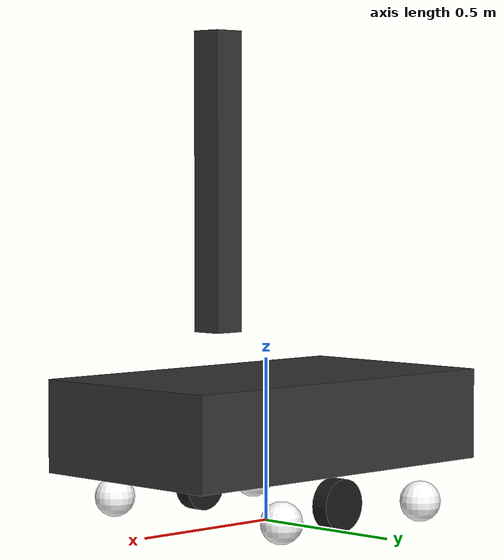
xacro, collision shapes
<?xml version="1.0"?>
<robot xmlns:xacro="http://www.ros.org/wiki/xacro" name="polebot">

  <!--  POLEBOT - AMR Differential Drive Robot                  -->
  <!--  Politeknik Manufaktur Bandung                           -->

  <xacro:include filename="$(find polebot_description)/urdf/materials.xacro"/>
  <xacro:include filename="$(find polebot_description)/urdf/polebot.gazebo.xacro"/>
  <!-- =================== ROBOT PARAMETERS =================== -->
  <!-- Base dimensions (from CAD) -->
  <xacro:property name="base_length"   value="1.172"/>
  <xacro:property name="base_width"    value="0.670"/>
  <xacro:property name="base_height"   value="0.563"/>
  <xacro:property name="base_mass"     value="84.837"/>

  <!-- Wheel parameters -->
  <xacro:property name="wheel_radius"  value="0.079"/>
  <xacro:property name="wheel_width"   value="0.055"/>
  <xacro:property name="wheel_mass"    value="3.610"/>
  <xacro:property name="wheel_separation" value="0.600"/>
  <xacro:property name="wheel_zoff"    value="0.231"/>

  <!-- Caster parameters -->
  <xacro:property name="caster_radius" value="0.0625"/>
  <xacro:property name="caster_width"  value="0.0520"/>
  <xacro:property name="caster_mass"   value="1.355"/>
  <xacro:property name="caster_xoff"   value="0.300"/>
  <xacro:property name="caster_yoff"   value="0.0289"/>
  <xacro:property name="caster_zoff"   value="0.245"/>

  <!-- Sensor parameters -->
  <xacro:property name="lidar_xoff"    value="0.496"/>
  <xacro:property name="lidar_zoff"    value="0.040"/>
  <xacro:property name="camera_xoff"   value="0.560"/>
  <xacro:property name="camera_zoff"   value="-0.023"/>

  <xacro:property name="monitor_xoff"  value="0.204"/>
  <xacro:property name="monitor_zoff"  value="0.730"/>

  <!-- =================== BASE FOOTPRINT ====================== -->
  <link name="base_footprint"/>

  <joint name="base_footprint_joint" type="fixed">
    <parent link="base_footprint"/>
    <child  link="base_link"/>
    <origin xyz="0 0 ${wheel_radius + wheel_zoff}" rpy="0 0 0"/>
  </joint>

  <!-- =================== BASE LINK ========================== -->
  <link name="base_link">
    <visual>
      <origin xyz="0 0 0" rpy="0 0 0"/>
      <geometry>
        <mesh filename="package://polebot_description/meshes/polebot_amr.stl" scale="0.001 0.001 0.001"/>
      </geometry>
      <material name="dark_grey"/>
    </visual>
    <collision>
      <origin xyz="0 0 0" rpy="0 0 0"/>
      <geometry>
        <box size="${base_length} ${base_width} ${base_height/2}"/>
      </geometry>
    </collision>
    <inertial>
      <mass value="${base_mass}"/>
      <inertia
        ixx="${(1/12)*base_mass*(base_width**2 + base_height**2)}"
        ixy="0" ixz="0"
        iyy="${(1/12)*base_mass*(base_length**2 + base_height**2)}"
        iyz="0"
        izz="${(1/12)*base_mass*(base_length**2 + base_width**2)}"/>
    </inertial>
  </link>

  <!-- =================== MONITOR ============================ -->
  <link name="monitor_link">
    <visual>
      <origin xyz="0 0 0" rpy="0 0 0"/>
      <geometry>
        <mesh filename="package://polebot_description/meshes/monitor.stl" scale="0.001 0.001 0.001"/>
      </geometry>
      <material name="dark_grey"/>
    </visual>
    <collision>
      <origin xyz="0 0 0" rpy="0 0 0"/>
      <geometry>
        <box size="0.1 0.1 0.9"/>
      </geometry>
    </collision>
    <inertial>
      <mass value="16.008"/>
      <inertia ixx="0.1" ixy="0" ixz="0" iyy="0.1" iyz="0" izz="0.1"/>
    </inertial>
  </link>
  <joint name="monitor_joint" type="fixed">
    <parent link="base_link"/>
    <child link="monitor_link"/>
    <origin xyz="${monitor_xoff} 0 ${monitor_zoff}" rpy="0 0 0"/>
  </joint>

  <!-- =================== WHEELS MACRO ======================= -->
  <xacro:macro name="drive_wheel" params="prefix y_reflect">
    <link name="${prefix}_link">
      <visual>
        <origin xyz="0 0 0" rpy="0 0 ${(y_reflect-1)*pi/2}"/>
        <geometry>
          <mesh filename="package://polebot_description/meshes/wheel.stl" scale="0.001 0.001 0.001"/>
        </geometry>
        <material name="black"/>
      </visual>
      <collision>
        <origin xyz="0 0 0" rpy="${pi/2} 0 0"/>
        <geometry>
          <cylinder radius="${wheel_radius}" length="${wheel_width}"/>
        </geometry>
      </collision>
      <inertial>
        <mass value="${wheel_mass}"/>
        <inertia
          ixx="${(1/12)*wheel_mass*(3*wheel_radius**2 + wheel_width**2)}"
          ixy="0" ixz="0"
          iyy="${(1/2)*wheel_mass*wheel_radius**2}"
          iyz="0"
          izz="${(1/12)*wheel_mass*(3*wheel_radius**2 + wheel_width**2)}"/>
      </inertial>
    </link>

    <joint name="${prefix}_joint" type="continuous">
      <parent link="base_link"/>
      <child  link="${prefix}_link"/>
      <origin xyz="0 ${y_reflect * wheel_separation/2} ${-wheel_zoff}" rpy="0 0 0"/>
      <axis xyz="0 1 0"/>
    </joint>
  </xacro:macro>

  <xacro:drive_wheel prefix="drivewhl_l" y_reflect="1"/>
  <xacro:drive_wheel prefix="drivewhl_r" y_reflect="-1"/>

  <!-- =================== CASTER MACRO ======================= -->
  <xacro:macro name="caster_wheel" params="prefix x_reflect y_reflect">
    <link name="${prefix}_link">
      <visual>
        <origin xyz="0 0 0" rpy="0 0 0"/>
        <geometry>
          <mesh filename="package://polebot_description/meshes/caster.stl" scale="0.001 0.001 0.001"/>
        </geometry>
        <material name="white"/>
      </visual>
      <collision>
        <origin xyz="0 0 0" rpy="0 0 0"/>
        <geometry>
          <sphere radius="${caster_radius}"/>
        </geometry>
      </collision>
      <inertial>
        <mass value="${caster_mass}"/>
        <inertia ixx="0.001" ixy="0" ixz="0" iyy="0.001" iyz="0" izz="0.001"/>
      </inertial>
    </link>

    <joint name="${prefix}_joint" type="fixed">
      <parent link="base_link"/>
      <child  link="${prefix}_link"/>
      <origin xyz="${x_reflect * caster_xoff} ${y_reflect * (base_width/2 + caster_yoff)} ${-caster_zoff}" rpy="0 0 0"/>
    </joint>
  </xacro:macro>

  <xacro:caster_wheel prefix="casterwhl_fl" x_reflect="1" y_reflect="1"/>
  <xacro:caster_wheel prefix="casterwhl_fr" x_reflect="1" y_reflect="-1"/>
  <xacro:caster_wheel prefix="casterwhl_rl" x_reflect="-1" y_reflect="1"/>
  <xacro:caster_wheel prefix="casterwhl_rr" x_reflect="-1" y_reflect="-1"/>

  <!-- =================== SENSORS ============================ -->
  <!-- LiDAR frame -->
  <link name="laser">
    <visual>
      <origin xyz="0 0 0" rpy="0 0 0"/>
      <geometry>
        <mesh filename="package://polebot_description/meshes/lidar.stl" scale="0.001 0.001 0.001"/>
      </geometry>
      <material name="blue"/>
    </visual>
    <collision>
      <origin xyz="0 0 0" rpy="0 0 0"/>
      <geometry>
        <cylinder radius="0.0208" length="0.055"/>
      </geometry>
    </collision>
    <inertial>
      <mass value="0.125"/>
      <inertia ixx="0.0001" ixy="0" ixz="0" iyy="0.0001" iyz="0" izz="0.0001"/>
    </inertial>
  </link>

  <joint name="laser_joint" type="fixed">
    <parent link="base_link"/>
    <child  link="laser"/>
    <origin xyz="${lidar_xoff} 0 ${lidar_zoff}" rpy="0 0 ${-pi/2}"/>
  </joint>

  <!-- IMU frame -->
  <link name="imu_link">
    <inertial>
      <mass value="0.01"/>
      <inertia ixx="0.00001" ixy="0" ixz="0" iyy="0.00001" iyz="0" izz="0.00001"/>
    </inertial>
  </link>

  <joint name="imu_joint" type="fixed">
    <parent link="base_link"/>
    <child  link="imu_link"/>
    <origin xyz="0.1 0 0.1" rpy="0 0 0"/>
  </joint>

  <!-- Camera frame -->
  <link name="camera_link">
    <visual>
      <origin xyz="0 0 0" rpy="0 0 0"/>
      <geometry>
        <mesh filename="package://polebot_description/meshes/camera.stl" scale="0.001 0.001 0.001"/>
      </geometry>
      <material name="dark_grey"/>
    </visual>
    <collision>
      <origin xyz="0 0 0" rpy="0 0 0"/>
      <geometry>
        <box size="0.015 0.130 0.0222"/>
      </geometry>
    </collision>
    <inertial>
      <mass value="0.123"/>
      <inertia ixx="0.0001" ixy="0" ixz="0" iyy="0.0001" iyz="0" izz="0.0001"/>
    </inertial>
  </link>

  <joint name="camera_joint" type="fixed">
    <parent link="base_link"/>
    <child  link="camera_link"/>
    <origin xyz="${camera_xoff} 0 ${camera_zoff}" rpy="0 0 0"/>
  </joint>

  <link name="camera_optical_frame"/>
  <joint name="camera_optical_joint" type="fixed">
    <parent link="camera_link"/>
    <child  link="camera_optical_frame"/>
    <origin xyz="0 0 0" rpy="${-pi/2} 0 ${-pi/2}"/>
  </joint>

</robot>

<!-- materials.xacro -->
<robot xmlns:xacro="http://www.ros.org/wiki/xacro">

  <material name="black">
    <color rgba="0.1 0.1 0.1 1.0"/>
  </material>

  <material name="dark_grey">
    <color rgba="0.2 0.2 0.2 1.0"/>
  </material>

  <material name="light_grey">
    <color rgba="0.7 0.7 0.7 1.0"/>
  </material>

  <material name="white">
    <color rgba="1.0 1.0 1.0 1.0"/>
  </material>

  <material name="blue">
    <color rgba="0.0 0.4 0.8 1.0"/>
  </material>

  <material name="red">
    <color rgba="0.8 0.1 0.1 1.0"/>
  </material>

  <material name="green">
    <color rgba="0.1 0.7 0.1 1.0"/>
  </material>

  <material name="orange">
    <color rgba="1.0 0.5 0.0 1.0"/>
  </material>

  <material name="yellow">
    <color rgba="1.0 0.9 0.0 1.0"/>
  </material>

</robot>
